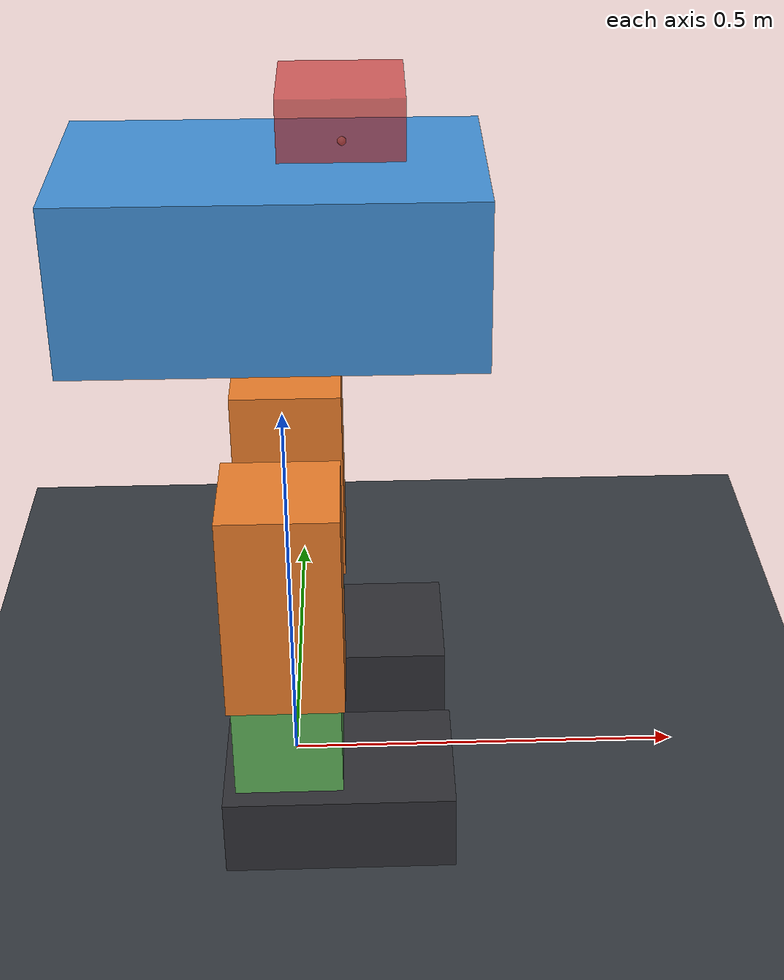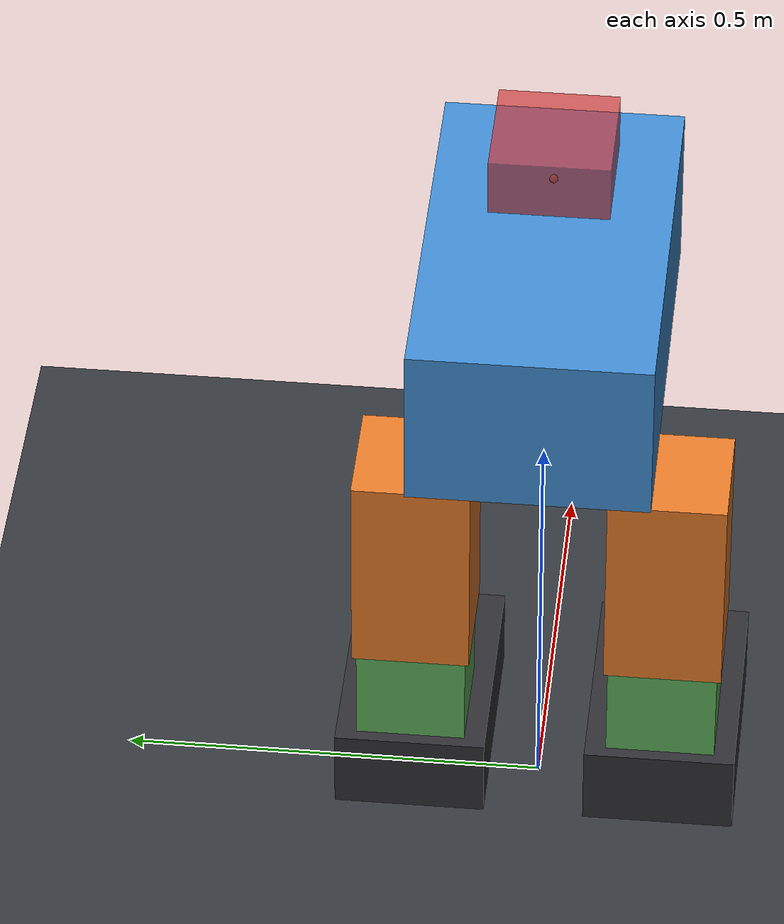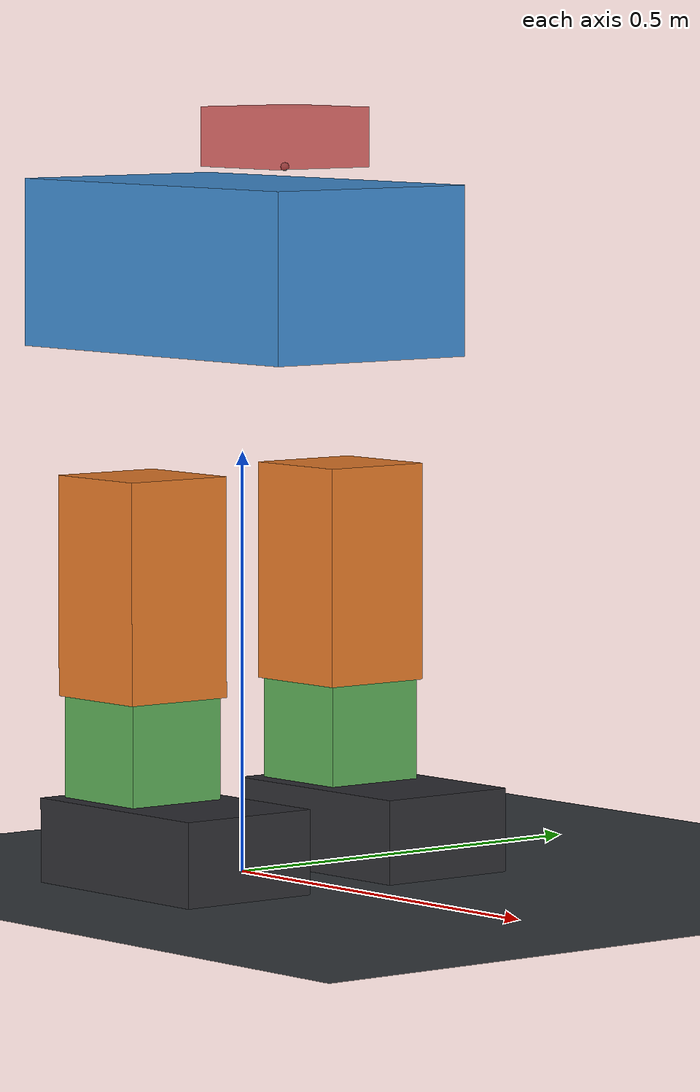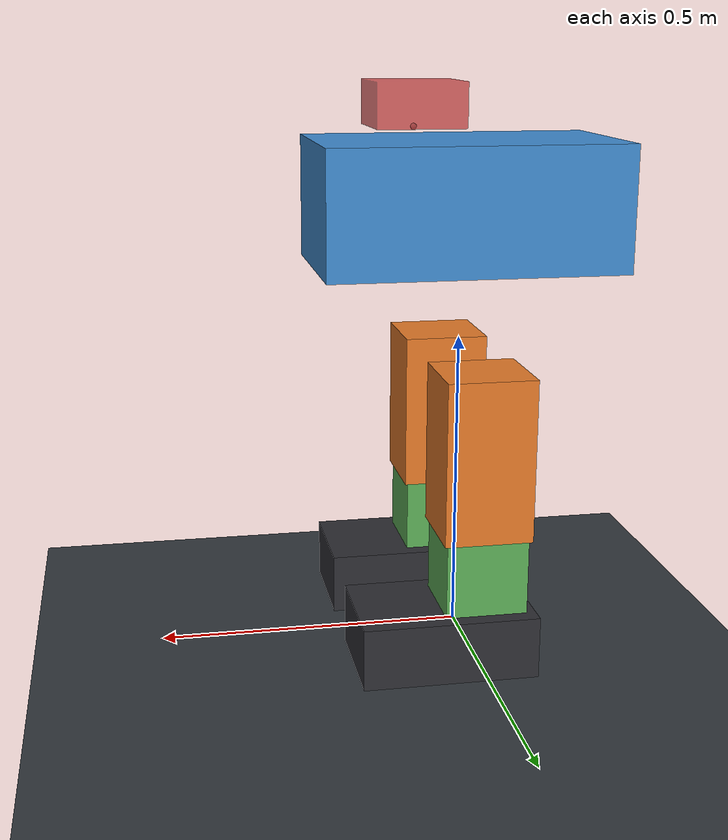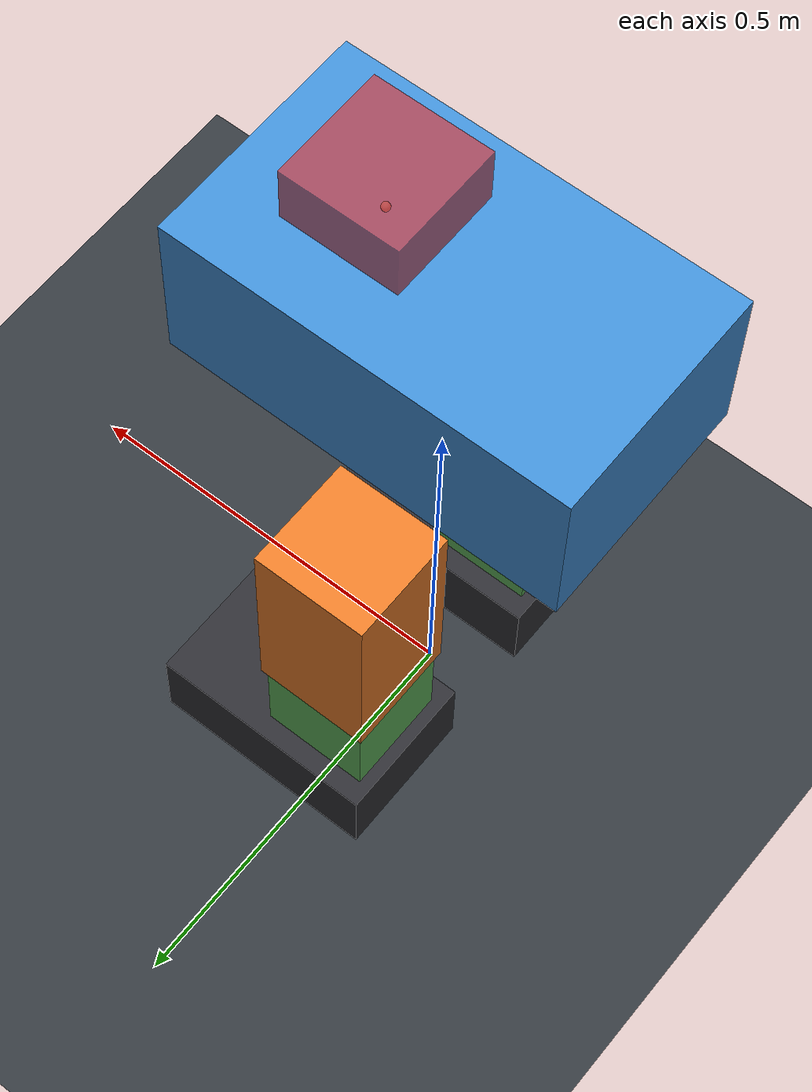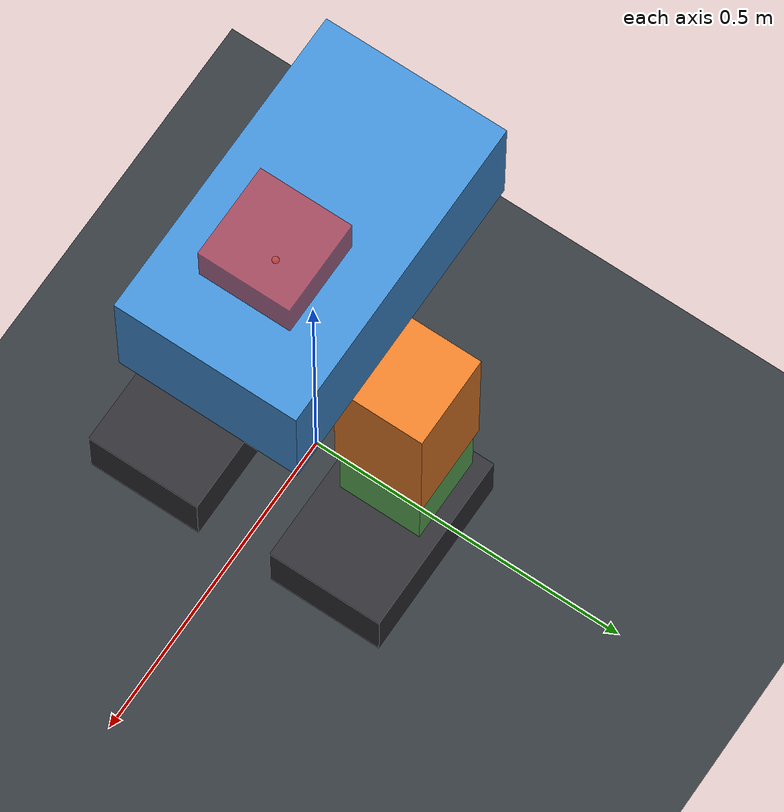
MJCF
<mujoco model="ModuBalance standing two-leg prototype">
  <compiler angle="degree" autolimits="true"/>
  <option timestep="0.002" gravity="0 0 -9.81" integrator="RK4"/>
  <default><geom friction="1.0 0.01 0.001"/><joint damping="0.5" armature="0.02"/></default>
  <worldbody>
    <light pos="0 -2 3" dir="0 0 -1" directional="true"/>
    <geom name="ground" type="plane" size="4 4 0.1" rgba="0.2 0.22 0.24 1"/>
    <!-- Standing-balance feasibility rig: co-located roll/pitch pivots at pelvis height. -->
    <body name="stand_roll_frame" pos="0 0 0.62">
      <inertial pos="0 0 0" mass="0.01" diaginertia="0.0001 0.0001 0.0001"/>
      <joint name="stand_roll" type="hinge" axis="1 0 0" range="-20 20"/>
      <body name="robot_body">
        <joint name="stand_pitch" type="hinge" axis="0 1 0" range="-20 20"/>
        <geom name="body_geom" type="box" pos="0 0 0.10" size="0.24 0.14 0.10" mass="5" rgba="0.25 0.55 0.82 1"/>
        <site name="body_imu" pos="0 0 0.10"/>
        <site name="prototype_payload_site" pos="0.08 0 0.22"/>
        <geom name="prototype_payload" type="box" pos="0.08 0 0.255" size="0.07 0.07 0.035" mass="0" contype="0" conaffinity="0" rgba="0.8 0.2 0.2 0.7"/>
        <body name="left_upper_leg" pos="0 0.15 -0.14">
          <geom type="box" pos="0 0 -0.13" size="0.07 0.07 0.13" mass="1.2" rgba="0.9 0.48 0.16 1"/>
          <body name="left_lower_leg" pos="0 0 -0.26">
            <geom type="box" pos="0 0 0" size="0.065 0.065 0.13" mass="1.0" rgba="0.36 0.68 0.34 1"/>
            <geom name="left_foot" type="box" pos="0.06 0 -0.17" size="0.14 0.09 0.05" mass="0.8" rgba="0.18 0.18 0.20 1"/>
          </body>
        </body>
        <body name="right_upper_leg" pos="0 -0.15 -0.14">
          <geom type="box" pos="0 0 -0.13" size="0.07 0.07 0.13" mass="1.2" rgba="0.9 0.48 0.16 1"/>
          <body name="right_lower_leg" pos="0 0 -0.26">
            <geom type="box" pos="0 0 0" size="0.065 0.065 0.13" mass="1.0" rgba="0.36 0.68 0.34 1"/>
            <geom name="right_foot" type="box" pos="0.06 0 -0.17" size="0.14 0.09 0.05" mass="0.8" rgba="0.18 0.18 0.20 1"/>
          </body>
        </body>
      </body>
    </body>
  </worldbody>
  <actuator>
    <motor name="stand_pitch_motor" joint="stand_pitch" ctrllimited="true" ctrlrange="-30 30"/>
    <motor name="stand_roll_motor" joint="stand_roll" ctrllimited="true" ctrlrange="-30 30"/>
  </actuator>
  <sensor>
    <framequat name="prototype_orientation" objtype="site" objname="body_imu"/>
    <gyro name="prototype_gyro" site="body_imu"/>
    <actuatorfrc name="prototype_pitch_torque" actuator="stand_pitch_motor"/>
    <actuatorfrc name="prototype_roll_torque" actuator="stand_roll_motor"/>
  </sensor>
</mujoco>
